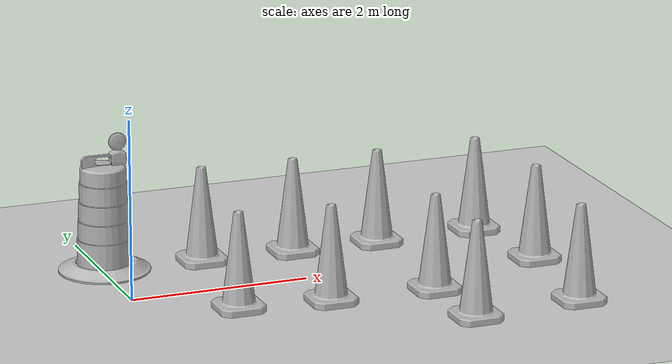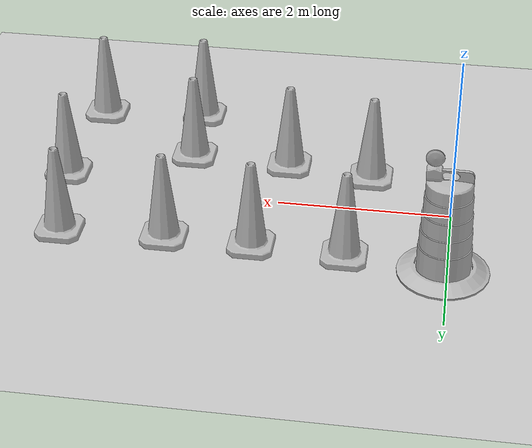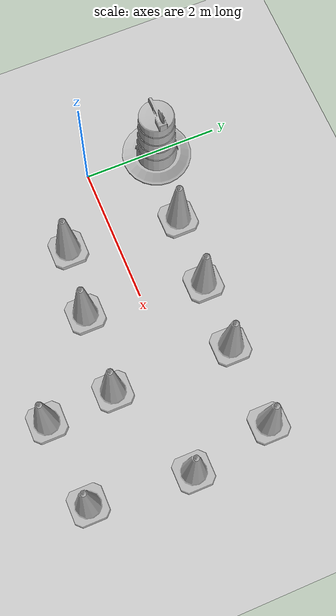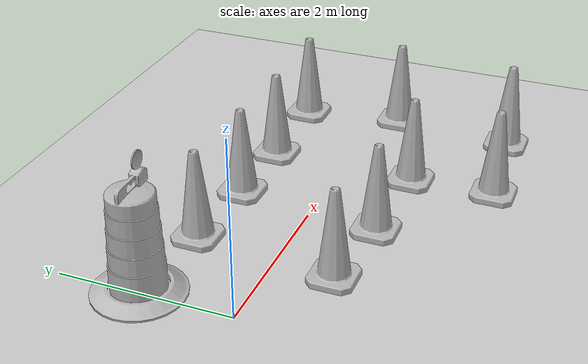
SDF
<sdf version="1.7">
 <world name="default">
  <light name="sun" type="directional">
   <pose>0 0 10 0 -0 0</pose>
   <diffuse>0.8 0.8 0.8 1</diffuse>
   <specular>0.2 0.2 0.2 1</specular>
   <attenuation>
    <range>1000</range>
    <constant>0.9</constant>
    <linear>0.01</linear>
    <quadratic>0.001</quadratic>
   </attenuation>
   <direction>-0.5 0.1 -0.9</direction>
   <spot><inner_angle>0</inner_angle><outer_angle>0</outer_angle><falloff>0</falloff></spot>
  </light>
  <model name="ground_plane">
   <static>1</static>
   <link name="link">
    <collision name="collision">
     <geometry><plane><normal>0 0 1</normal><size>100 100</size></plane></geometry>
     <surface><friction><ode><mu>100</mu><mu2>50</mu2></ode></friction></surface>
    </collision>
    <visual name="visual">
     <cast_shadows>0</cast_shadows>
     <geometry><plane><normal>0 0 1</normal><size>100 100</size></plane></geometry>
     <material>
      <script><uri>file://media/materials/scripts/gazebo.material</uri><name>Gazebo/Grey</name></script>
     </material>
    </visual>
   </link>
  </model>
  <gravity>0 0 -9.8</gravity>
  <magnetic_field>6e-06 2.3e-05 -4.2e-05</magnetic_field>
  <atmosphere type="adiabatic"/>
  <physics type="ode">
   <max_step_size>0.001</max_step_size>
   <real_time_factor>1</real_time_factor>
   <real_time_update_rate>1000</real_time_update_rate>
  </physics>
  <scene><ambient>0.4 0.4 0.4 1</ambient><background>0.7 0.7 0.7 1</background><shadows>1</shadows></scene>
  <audio><device>default</device></audio>
  <spherical_coordinates>
   <surface_model>EARTH_WGS84</surface_model>
   <latitude_deg>0</latitude_deg>
   <longitude_deg>0</longitude_deg>
   <elevation>0</elevation>
   <heading_deg>0</heading_deg>
  </spherical_coordinates>
  <model name="Construction Cone">
   <link name="link">
    <collision name="collision">
     <geometry>
      <mesh><scale>10 10 10</scale><uri>model://construction_cone/meshes/construction_cone.dae</uri></mesh>
     </geometry>
    </collision>
    <visual name="visual">
     <geometry>
      <mesh><scale>10 10 10</scale><uri>model://construction_cone/meshes/construction_cone.dae</uri></mesh>
     </geometry>
    </visual>
    <inertial>
     <inertia><ixx>1</ixx><ixy>0</ixy><ixz>0</ixz><iyy>1</iyy><iyz>0</iyz><izz>1</izz></inertia>
     <mass>1</mass>
    </inertial>
   </link>
   <pose>1.13431 0.958419 -0 0 -1e-06 0</pose>
  </model>
  <model name="Construction Barrel">
   <link name="link">
    <inertial>
     <pose>0 0 0.4 0 -0 0</pose>
     <mass>500</mass>
     <inertia><ixx>51.2096</ixx><iyy>51.2096</iyy><izz>25</izz><ixy>0</ixy><ixz>0</ixz><iyz>0</iyz></inertia>
    </inertial>
    <collision name="collision">
     <geometry><mesh><uri>model://construction_barrel/meshes/construction_barrel.dae</uri></mesh></geometry>
    </collision>
    <visual name="visual">
     <geometry><mesh><uri>model://construction_barrel/meshes/construction_barrel.dae</uri></mesh></geometry>
    </visual>
   </link>
   <pose>0.0435 1.07488 -1e-06 4e-06 -1e-06 -3.2e-05</pose>
  </model>
  <model name="Construction Cone_0">
   <link name="link">
    <collision name="collision">
     <geometry>
      <mesh><scale>10 10 10</scale><uri>model://construction_cone/meshes/construction_cone.dae</uri></mesh>
     </geometry>
    </collision>
    <visual name="visual">
     <geometry>
      <mesh><scale>10 10 10</scale><uri>model://construction_cone/meshes/construction_cone.dae</uri></mesh>
     </geometry>
    </visual>
    <inertial>
     <inertia><ixx>1</ixx><ixy>0</ixy><ixz>0</ixz><iyy>1</iyy><iyz>0</iyz><izz>1</izz></inertia>
     <mass>1</mass>
    </inertial>
   </link>
   <pose>2.1828 0.903401 -0 0 -1e-06 0</pose>
  </model>
  <model name="Construction Cone_1">
   <link name="link">
    <collision name="collision">
     <geometry>
      <mesh><scale>10 10 10</scale><uri>model://construction_cone/meshes/construction_cone.dae</uri></mesh>
     </geometry>
    </collision>
    <visual name="visual">
     <geometry>
      <mesh><scale>10 10 10</scale><uri>model://construction_cone/meshes/construction_cone.dae</uri></mesh>
     </geometry>
    </visual>
    <inertial>
     <inertia><ixx>1</ixx><ixy>0</ixy><ixz>0</ixz><iyy>1</iyy><iyz>0</iyz><izz>1</izz></inertia>
     <mass>1</mass>
    </inertial>
   </link>
   <pose>3.17753 0.881299 -0 0 -1e-06 0</pose>
  </model>
  <model name="Construction Cone_2">
   <link name="link">
    <collision name="collision">
     <geometry>
      <mesh><scale>10 10 10</scale><uri>model://construction_cone/meshes/construction_cone.dae</uri></mesh>
     </geometry>
    </collision>
    <visual name="visual">
     <geometry>
      <mesh><scale>10 10 10</scale><uri>model://construction_cone/meshes/construction_cone.dae</uri></mesh>
     </geometry>
    </visual>
    <inertial>
     <inertia><ixx>1</ixx><ixy>0</ixy><ixz>0</ixz><iyy>1</iyy><iyz>0</iyz><izz>1</izz></inertia>
     <mass>1</mass>
    </inertial>
   </link>
   <pose>4.37539 0.914591 -0 0 -1e-06 0</pose>
  </model>
  <model name="Construction Cone_3">
   <link name="link">
    <collision name="collision">
     <geometry>
      <mesh><scale>10 10 10</scale><uri>model://construction_cone/meshes/construction_cone.dae</uri></mesh>
     </geometry>
    </collision>
    <visual name="visual">
     <geometry>
      <mesh><scale>10 10 10</scale><uri>model://construction_cone/meshes/construction_cone.dae</uri></mesh>
     </geometry>
    </visual>
    <inertial>
     <inertia><ixx>1</ixx><ixy>0</ixy><ixz>0</ixz><iyy>1</iyy><iyz>0</iyz><izz>1</izz></inertia>
     <mass>1</mass>
    </inertial>
   </link>
   <pose>0.972587 -0.683653 -1e-05 -1e-06 0 0</pose>
  </model>
  <model name="Construction Cone_4">
   <link name="link">
    <collision name="collision">
     <geometry>
      <mesh><scale>10 10 10</scale><uri>model://construction_cone/meshes/construction_cone.dae</uri></mesh>
     </geometry>
    </collision>
    <visual name="visual">
     <geometry>
      <mesh><scale>10 10 10</scale><uri>model://construction_cone/meshes/construction_cone.dae</uri></mesh>
     </geometry>
    </visual>
    <inertial>
     <inertia><ixx>1</ixx><ixy>0</ixy><ixz>0</ixz><iyy>1</iyy><iyz>0</iyz><izz>1</izz></inertia>
     <mass>1</mass>
    </inertial>
   </link>
   <pose>1.97402 -0.811552 -0 0 -1e-06 0</pose>
  </model>
  <model name="Construction Cone_5">
   <link name="link">
    <collision name="collision">
     <geometry>
      <mesh><scale>10 10 10</scale><uri>model://construction_cone/meshes/construction_cone.dae</uri></mesh>
     </geometry>
    </collision>
    <visual name="visual">
     <geometry>
      <mesh><scale>10 10 10</scale><uri>model://construction_cone/meshes/construction_cone.dae</uri></mesh>
     </geometry>
    </visual>
    <inertial>
     <inertia><ixx>1</ixx><ixy>0</ixy><ixz>0</ixz><iyy>1</iyy><iyz>0</iyz><izz>1</izz></inertia>
     <mass>1</mass>
    </inertial>
   </link>
   <pose>3.15051 -0.866677 -0 0 -1e-06 0</pose>
  </model>
  <model name="Construction Cone_6">
   <link name="link">
    <collision name="collision">
     <geometry>
      <mesh><scale>10 10 10</scale><uri>model://construction_cone/meshes/construction_cone.dae</uri></mesh>
     </geometry>
    </collision>
    <visual name="visual">
     <geometry>
      <mesh><scale>10 10 10</scale><uri>model://construction_cone/meshes/construction_cone.dae</uri></mesh>
     </geometry>
    </visual>
    <inertial>
     <inertia><ixx>1</ixx><ixy>0</ixy><ixz>0</ixz><iyy>1</iyy><iyz>0</iyz><izz>1</izz></inertia>
     <mass>1</mass>
    </inertial>
   </link>
   <pose>3.20597 -1.85606 -1e-05 -1e-06 0 0</pose>
  </model>
  <model name="Construction Cone_7">
   <link name="link">
    <collision name="collision">
     <geometry>
      <mesh><scale>10 10 10</scale><uri>model://construction_cone/meshes/construction_cone.dae</uri></mesh>
     </geometry>
    </collision>
    <visual name="visual">
     <geometry>
      <mesh><scale>10 10 10</scale><uri>model://construction_cone/meshes/construction_cone.dae</uri></mesh>
     </geometry>
    </visual>
    <inertial>
     <inertia><ixx>1</ixx><ixy>0</ixy><ixz>0</ixz><iyy>1</iyy><iyz>0</iyz><izz>1</izz></inertia>
     <mass>1</mass>
    </inertial>
   </link>
   <pose>4.58829 -0.285054 -0 0 -1e-06 0</pose>
  </model>
  <model name="Construction Cone_8">
   <link name="link">
    <collision name="collision">
     <geometry>
      <mesh><scale>10 10 10</scale><uri>model://construction_cone/meshes/construction_cone.dae</uri></mesh>
     </geometry>
    </collision>
    <visual name="visual">
     <geometry>
      <mesh><scale>10 10 10</scale><uri>model://construction_cone/meshes/construction_cone.dae</uri></mesh>
     </geometry>
    </visual>
    <inertial>
     <inertia><ixx>1</ixx><ixy>0</ixy><ixz>0</ixz><iyy>1</iyy><iyz>0</iyz><izz>1</izz></inertia>
     <mass>1</mass>
    </inertial>
   </link>
   <pose>4.45454 -1.74399 -1e-05 0 -0 0</pose>
  </model>
 </world>
</sdf>
